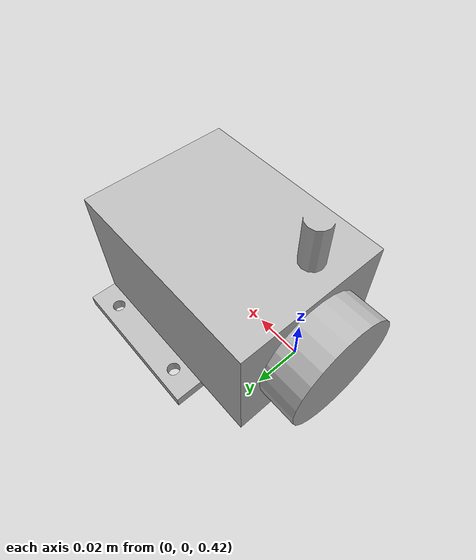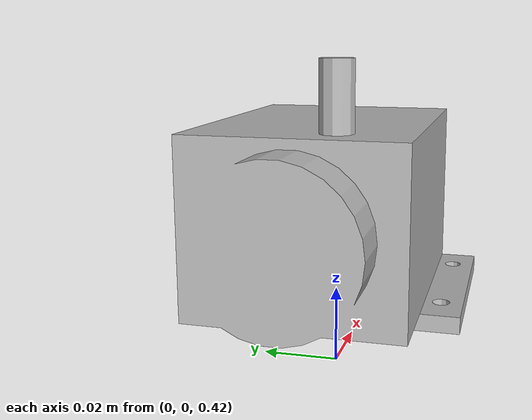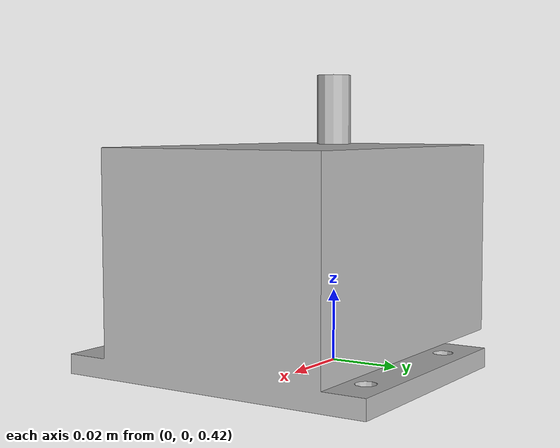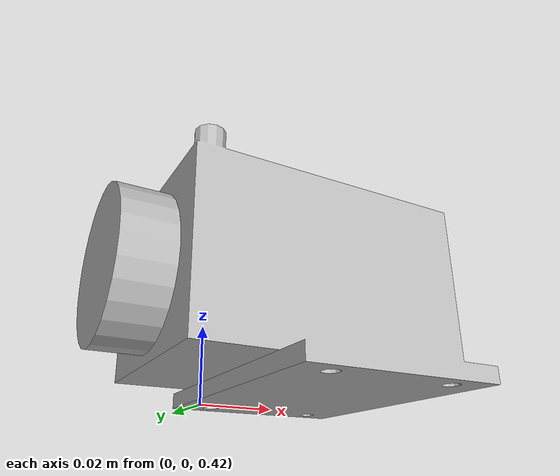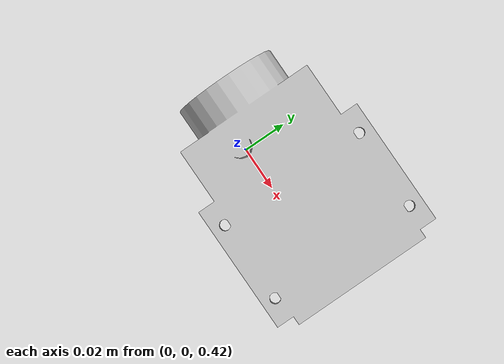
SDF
<?xml version="1.0"?>
<sdf version="1.4">
	<model name="wire_sensor">
	<pose>0 0 0.5 0 0 0</pose>
	<link name="link">
	<gravity>0</gravity>
		<visual name="visual">
			<pose>0 0 0 1.57 0 1.57 </pose>
			<geometry>
				<mesh>
					<uri>model://wire_sensor/meshes/wire_sensor.STL </uri>
				</mesh>
			</geometry>
		</visual>
	</link>
	</model>
</sdf>
